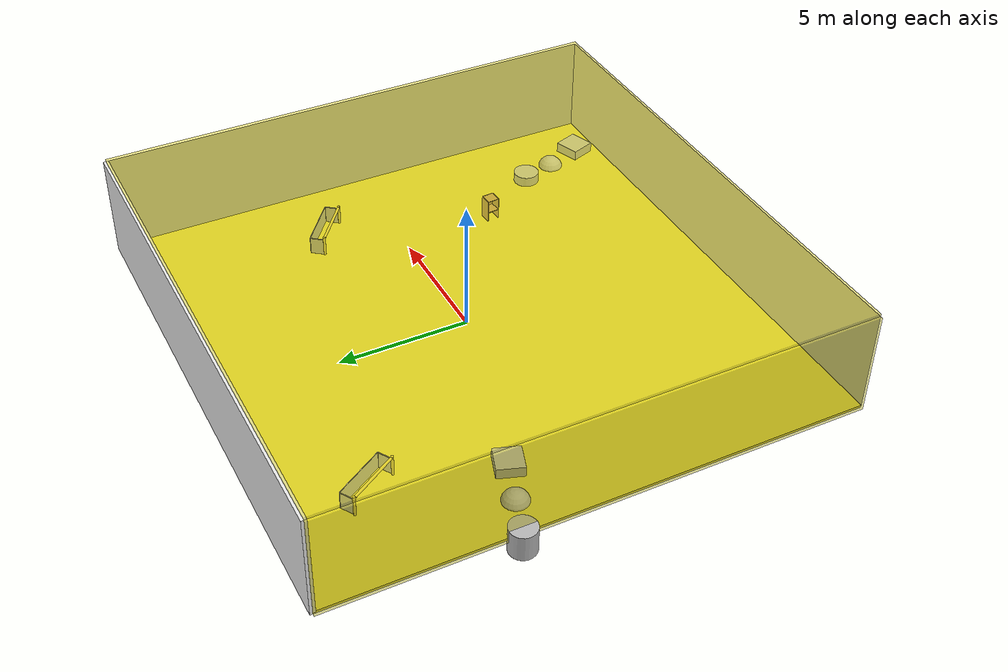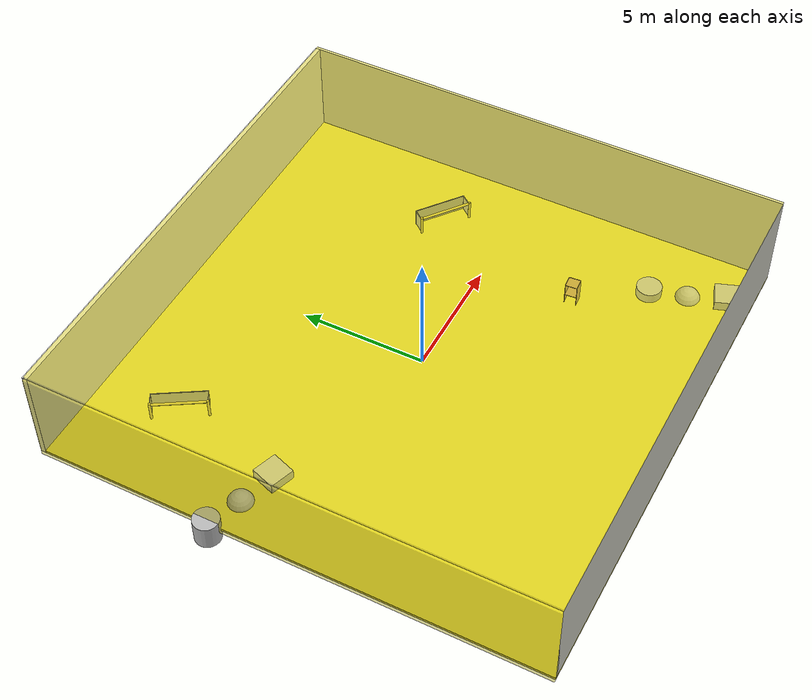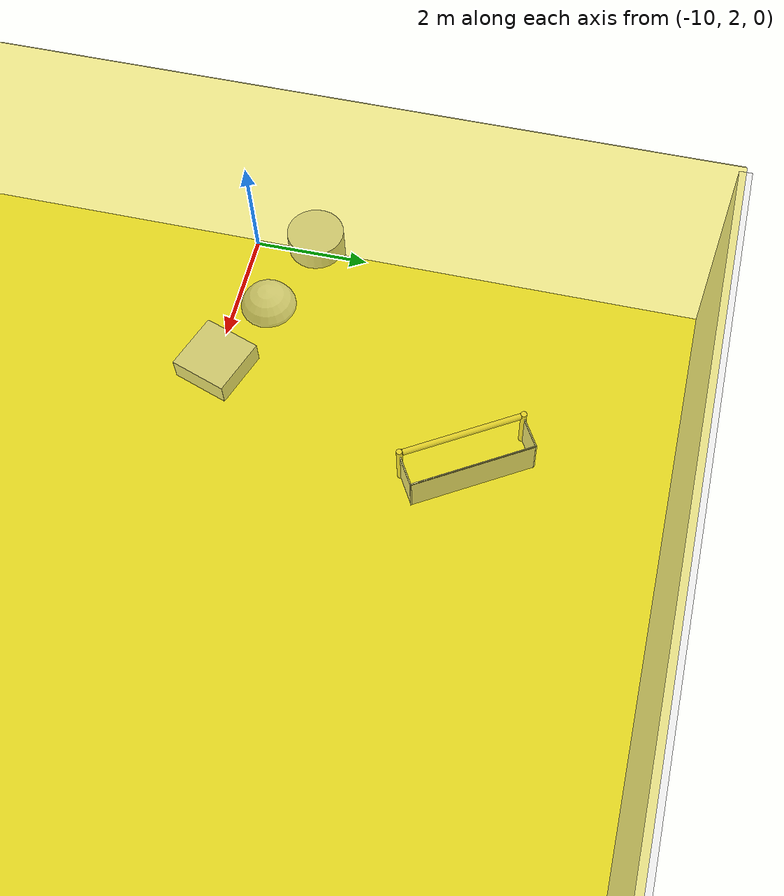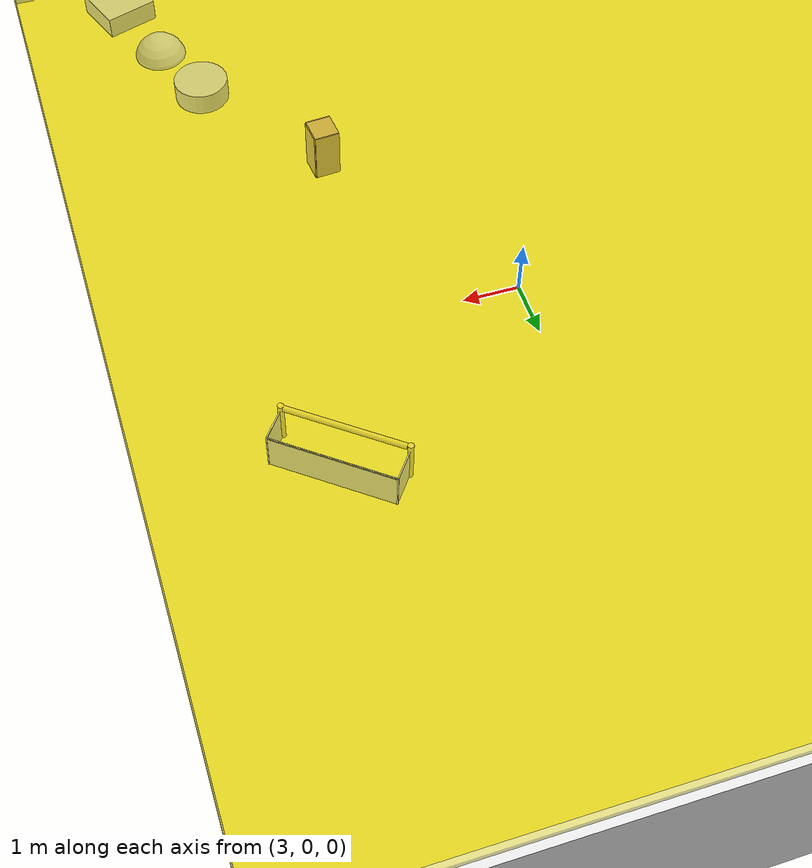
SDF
<sdf version="1.4">
 <world name="default">
  <physics type="ode">
   <max_step_size>0.001</max_step_size>
   <real_time_factor>1</real_time_factor>
   <real_time_update_rate>1000</real_time_update_rate>
   <gravity>0 0 -9.8</gravity>
  </physics>
  <scene><ambient>0.4 0.4 0.4 1</ambient><background>0.7 0.7 0.7 1</background><shadows>1</shadows></scene>
  <model name="Surrounding">
   <static>1</static>
   <link name="Ceiling">
    <collision name="Ceiling_Collision"><geometry><box><size>20 20 0.1</size></box></geometry></collision>
    <visual name="Ceiling_Visual">
     <geometry><box><size>20 20 0.1</size></box></geometry>
     <material>
      <script>
       <uri>file://media/materials/scripts/gazebo.material</uri>
       <name>Gazebo/YellowTransparent</name>
      </script>
     </material>
    </visual>
    <pose>0 0 4.05 0 0 0</pose>
   </link>
   <link name="Wall_South">
    <collision name="Wall_South_Collision">
     <geometry><box><size>20 0 4</size></box></geometry>
     <pose>0 0 2 0 -0 0</pose>
    </collision>
    <visual name="Wall_South_Visual">
     <pose>0 0 2 0 -0 0</pose>
     <geometry><box><size>20 0 4</size></box></geometry>
     <material>
      <script><uri>file://media/materials/scripts/gazebo.material</uri><name>Gazebo/PaintedWall</name></script>
     </material>
    </visual>
    <velocity_decay><linear>0</linear><angular>0</angular></velocity_decay>
    <pose>0 -10 0 0 -0 0</pose>
   </link>
   <link name="Wall_East">
    <collision name="Wall_21_Collision">
     <geometry><box><size>20 0 4</size></box></geometry>
     <pose>0 0 2 0 -0 0</pose>
    </collision>
    <visual name="Wall_21_Visual">
     <pose>0 0 2 0 -0 0</pose>
     <geometry><box><size>20 0 4</size></box></geometry>
     <material>
      <script><uri>file://media/materials/scripts/gazebo.material</uri><name>Gazebo/LightOff</name></script>
     </material>
    </visual>
    <velocity_decay><linear>0</linear><angular>0</angular></velocity_decay>
    <pose>10 0 0 0 -0 1.5708</pose>
   </link>
   <link name="Wall_North">
    <collision name="Wall_22_Collision">
     <geometry><box><size>20 0.2 4</size></box></geometry>
     <pose>0 0 2 0 -0 0</pose>
    </collision>
    <visual name="Wall_22_Visual">
     <pose>0 0 2 0 -0 0</pose>
     <geometry><box><size>20 0.2 4</size></box></geometry>
     <material>
      <script><uri>file://media/materials/scripts/gazebo.material</uri><name>Gazebo/White</name></script>
     </material>
    </visual>
    <velocity_decay><linear>0</linear><angular>0</angular></velocity_decay>
    <pose>0 10 0 0 -0 0</pose>
   </link>
   <link name="Wall_West">
    <collision name="Wall_23_Collision">
     <geometry><box><size>20 0.2 4</size></box></geometry>
     <pose>0 0 2 0 -0 0</pose>
    </collision>
    <visual name="Wall_23_Visual">
     <pose>0 0 2 0 -0 0</pose>
     <geometry><box><size>20 0.2 4</size></box></geometry>
     <material>
      <script>
       <uri>file://media/materials/scripts/gazebo.material</uri>
       <name>Gazebo/YellowTransparent</name>
      </script>
     </material>
    </visual>
    <velocity_decay><linear>0</linear><angular>0</angular></velocity_decay>
    <pose>-10 0 0 0 0 -1.5708</pose>
   </link>
   <link name="Ground_link">
    <collision name="collision">
     <pose>0 0 .05 0 -0 0</pose>
     <geometry><box><size>20 20 0.1</size></box></geometry>
    </collision>
    <visual name="visual">
     <pose>0 0 .05 0 -0 0</pose>
     <geometry><box><size>20 20 0.1</size></box></geometry>
     <material>
      <script><uri>file://media/materials/scripts/gazebo.material</uri><name>Gazebo/Yellow</name></script>
     </material>
    </visual>
   </link>
   <static>1</static>
  </model>
  <spherical_coordinates>
   <surface_model>EARTH_WGS84</surface_model>
   <latitude_deg>0</latitude_deg>
   <longitude_deg>0</longitude_deg>
   <elevation>0</elevation>
   <heading_deg>0</heading_deg>
  </spherical_coordinates>
  <light name="lightball_0" type="diffuse">
   <diffuse>0.8 0.8 0.8 1</diffuse>
   <specular>0.2 0.2 0.2 1</specular>
   <attenuation>
    <range>100</range>
    <constant>0.7</constant>
    <linear>0.01</linear>
    <quadratic>0.001</quadratic>
   </attenuation>
   <direction>-0.5 0.1 -0.9</direction>
   <pose>-8.38689758497 -9.84431784708 3.38224528826 0 0 0</pose>
  </light>
  <light name="lightball_1" type="diffuse">
   <diffuse>0.8 0.8 0.8 1</diffuse>
   <specular>0.2 0.2 0.2 1</specular>
   <attenuation>
    <range>100</range>
    <constant>0.7</constant>
    <linear>0.01</linear>
    <quadratic>0.001</quadratic>
   </attenuation>
   <direction>-0.5 0.1 -0.9</direction>
   <pose>5.73754049961 6.17832266448 1.12369944464 0 0 0</pose>
  </light>
  <light name="lightball_2" type="diffuse">
   <diffuse>0.8 0.8 0.8 1</diffuse>
   <specular>0.2 0.2 0.2 1</specular>
   <attenuation>
    <range>100</range>
    <constant>0.7</constant>
    <linear>0.01</linear>
    <quadratic>0.001</quadratic>
   </attenuation>
   <direction>-0.5 0.1 -0.9</direction>
   <pose>3.79374072169 -7.55854413569 2.5856491044 0 0 0</pose>
  </light>
  <light name="lightball_3" type="diffuse">
   <diffuse>0.8 0.8 0.8 1</diffuse>
   <specular>0.2 0.2 0.2 1</specular>
   <attenuation>
    <range>100</range>
    <constant>0.7</constant>
    <linear>0.01</linear>
    <quadratic>0.001</quadratic>
   </attenuation>
   <direction>-0.5 0.1 -0.9</direction>
   <pose>6.06625957647 2.97702392187 0.544393771264 0 0 0</pose>
  </light>
  <include>
   <uri>model://textured_shapes</uri>
   <pose>-8.68547242975 2.5806956095 0 0 0 1.23840464021</pose>
  </include>
  <include>
   <uri>model://robocup_3Dsim_goal</uri>
   <pose>-6.45928136099 6.48794940916 0 0 0 0.550818652679</pose>
  </include>
  <include><uri>model://cabinet</uri><pose>5.36680835381 -3.70873023014 0 0 0 0.0822889937748</pose></include>
  <include>
   <uri>model://textured_shapes</uri>
   <pose>7.54262624064 -7.62307114371 0 0 0 0.341620612051</pose>
  </include>
  <include>
   <uri>model://robocup_3Dsim_goal</uri>
   <pose>6.80822977336 2.46237300226 0 0 0 0.911441472826</pose>
  </include>
 </world>
</sdf>

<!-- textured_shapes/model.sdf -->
<sdf version="1.6">
  <model name="textured_shapes">
    <pose>0 0 0.5 0 0 0</pose>
    <link name="box">
      <pose>0 -1.5 0 0 0 0</pose>
      <collision name="collision">
        <geometry>
          <box>
            <size>1 1 1</size>
          </box>
        </geometry>
      </collision>
      <visual name="visual">
        <geometry>
          <box>
            <size>1 1 1</size>
          </box>
        </geometry>
        <material>
          <script>
            <uri>model://../model_source/models/textured_shapes/materials/scripts</uri>
            <uri>model://../model_source/models/textured_shapes/materials/textures</uri>
            <name>TexturedShape/Squares</name>
          </script>
        </material>
      </visual>
    </link>
    <link name="sphere">
      <collision name="collision">
        <geometry>
          <sphere>
            <radius>0.5</radius>
          </sphere>
        </geometry>
      </collision>
      <visual name="visual">
        <geometry>
          <sphere>
            <radius>0.5</radius>
          </sphere>
        </geometry>
        <material>
          <script>
            <uri>model://../model_source/models/textured_shapes/materials/scripts</uri>
            <uri>model://../model_source/models/textured_shapes/materials/textures</uri>
            <name>TexturedShape/Squares</name>
          </script>
        </material>
      </visual>
    </link>
    <link name="cylinder">
      <pose>0 1.5 0 0 0 0</pose>
      <collision name="collision">
        <geometry>
          <cylinder>
            <radius>0.5</radius>
            <length>1</length>
          </cylinder>
        </geometry>
      </collision>
      <visual name="visual">
        <geometry>
          <cylinder>
            <radius>0.5</radius>
            <length>1</length>
          </cylinder>
        </geometry>
        <material>
          <script>
            <uri>model://../model_source/models/textured_shapes/materials/scripts</uri>
            <uri>model://../model_source/models/textured_shapes/materials/textures</uri>
            <name>TexturedShape/Squares</name>
          </script>
        </material>
      </visual>
    </link>
  </model>
</sdf>

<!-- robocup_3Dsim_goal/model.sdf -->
<sdf version="1.5">
  <model name="robocup_3d_goal">
    <static>true</static>
    <link name="left_post">
      <pose>0 1.05 0.45 0 0 0</pose>
      <collision name="collision">
        <geometry>
          <cylinder>
            <radius>0.05</radius>
            <length>0.9</length>
          </cylinder>
        </geometry>
      </collision>
      <visual name="visual">
        <geometry>
          <cylinder>
            <radius>0.05</radius>
            <length>0.9</length>
          </cylinder>
        </geometry>
        <material>
          <script>
            <uri>file://media/materials/scripts/gazebo.material</uri>
            <name>Gazebo/ZincYellow</name>
          </script>
        </material>
      </visual>
    </link>
    <link name="left_support_horiz_lower">
      <pose>0.30 1.05 0.01 0 0 0</pose>
      <collision name="collision">
        <geometry>
          <box>
            <size>0.50 0.02 0.02</size>
          </box>
        </geometry>
      </collision>
      <visual name="visual">
        <geometry>
          <box>
            <size>0.50 0.02 0.02</size>
          </box>
        </geometry>
        <material>
          <script>
            <uri>file://media/materials/scripts/gazebo.material</uri>
            <name>Gazebo/White</name>
          </script>
        </material>
      </visual>
    </link>
    <link name="left_support_horiz_upper">
      <pose>0.30 1.05 0.79 0 0 0</pose>
      <collision name="collision">
        <geometry>
          <box>
            <size>0.50 0.02 0.02</size>
          </box>
        </geometry>
      </collision>
      <visual name="visual">
        <geometry>
          <box>
            <size>0.50 0.02 0.02</size>
          </box>
        </geometry>
        <material>
          <script>
            <uri>file://media/materials/scripts/gazebo.material</uri>
            <name>Gazebo/White</name>
          </script>
        </material>
      </visual>
    </link>
    <link name="left_support_vertical">
      <pose>0.56 1.05 0.4 0 1.5708 0</pose>
      <collision name="collision">
        <geometry>
          <box>
            <size>0.80 0.02 0.02</size>
          </box>
        </geometry>
      </collision>
      <visual name="visual">
        <geometry>
          <box>
            <size>0.80 0.02 0.02</size>
          </box>
        </geometry>
        <material>
          <script>
            <uri>file://media/materials/scripts/gazebo.material</uri>
            <name>Gazebo/White</name>
          </script>
        </material>
      </visual>
    </link>
    <link name="right_support_horiz_lower">
      <pose>0.30 -1.05 0.01 0 0 0</pose>
      <collision name="collision">
        <geometry>
          <box>
            <size>0.50 0.02 0.02</size>
          </box>
        </geometry>
      </collision>
      <visual name="visual">
        <geometry>
          <box>
            <size>0.50 0.02 0.02</size>
          </box>
        </geometry>
        <material>
          <script>
            <uri>file://media/materials/scripts/gazebo.material</uri>
            <name>Gazebo/White</name>
          </script>
        </material>
      </visual>
    </link>
    <link name="right_support_horiz_upper">
      <pose>0.30 -1.05 0.79 0 0 0</pose>
      <collision name="collision">
        <geometry>
          <box>
            <size>0.50 0.02 0.02</size>
          </box>
        </geometry>
      </collision>
      <visual name="visual">
        <geometry>
          <box>
            <size>0.50 0.02 0.02</size>
          </box>
        </geometry>
        <material>
          <script>
            <uri>file://media/materials/scripts/gazebo.material</uri>
            <name>Gazebo/White</name>
          </script>
        </material>
      </visual>
    </link>
    <link name="right_support_vertical">
      <pose>0.56 -1.05 0.4 0 1.5708 0</pose>
      <collision name="collision">
        <geometry>
          <box>
            <size>0.80 0.02 0.02</size>
          </box>
        </geometry>
      </collision>
      <visual name="visual">
        <geometry>
          <box>
            <size>0.80 0.02 0.02</size>
          </box>
        </geometry>
        <material>
          <script>
            <uri>file://media/materials/scripts/gazebo.material</uri>
            <name>Gazebo/White</name>
          </script>
        </material>
      </visual>
    </link>
    <link name="center_support_horiz_lower">
      <pose>0.56 0 0.01 0 1.5708 0</pose>
      <collision name="collision">
        <geometry>
          <box>
            <size>0.02 2.08 0.02</size>
          </box>
        </geometry>
      </collision>
      <visual name="visual">
        <geometry>
          <box>
            <size>0.02 2.08 0.02</size>
          </box>
        </geometry>
        <material>
          <script>
            <uri>file://media/materials/scripts/gazebo.material</uri>
            <name>Gazebo/White</name>
          </script>
        </material>
      </visual>
    </link>
    <link name="center_support_horiz_upper">
      <pose>0.56 0 0.79 0 1.5708 0</pose>
      <collision name="collision">
        <geometry>
          <box>
            <size>0.02 2.08 0.02</size>
          </box>
        </geometry>
      </collision>
      <visual name="visual">
        <geometry>
          <box>
            <size>0.02 2.08 0.02</size>
          </box>
        </geometry>
        <material>
          <script>
            <uri>file://media/materials/scripts/gazebo.material</uri>
            <name>Gazebo/White</name>
          </script>
        </material>
      </visual>
    </link>
    <link name="right_post">
      <pose>0 -1.05 0.45 0 0 0</pose>
      <collision name="collision">
        <geometry>
          <cylinder>
            <radius>0.05</radius>
            <length>0.9</length>
          </cylinder>
        </geometry>
      </collision>
      <visual name="visual">
        <geometry>
          <cylinder>
            <radius>0.05</radius>
            <length>0.9</length>
          </cylinder>
        </geometry>
        <material>
          <script>
            <uri>file://media/materials/scripts/gazebo.material</uri>
            <name>Gazebo/ZincYellow</name>
          </script>
        </material>
      </visual>
    </link>
    <link name="crossbar">
      <pose>0 0 0.85 1.57 1.57 0</pose>
      <collision name="collision">
        <geometry>
          <cylinder>
            <radius>0.05</radius>
            <length>2.0</length>
          </cylinder>
        </geometry>
      </collision>
      <visual name="visual">
        <geometry>
          <cylinder>
            <radius>0.05</radius>
            <length>2.0</length>
          </cylinder>
        </geometry>
        <material>
          <script>
            <uri>file://media/materials/scripts/gazebo.material</uri>
            <name>Gazebo/ZincYellow</name>
          </script>
        </material>
      </visual>
    </link>
    <link name="center_net">
      <pose>0.56 0 0.40 0 0 0</pose>
      <collision name="collision">
        <geometry>
          <box>
            <size>0.01 2.1 0.80</size>
          </box>
        </geometry>
      </collision>
      <visual name="visual">
        <geometry>
          <box>
            <size>0.01 2.1 0.80</size>
          </box>
        </geometry>
        <material>
          <script>
            <uri>model://../model_source/models/robocup09_spl_field/materials/scripts/</uri>
            <uri>model://../model_source/models/robocup09_spl_field/materials/textures/</uri>
            <name>RoboCup/Net</name>
          </script>
        </material>
      </visual>
    </link>
    <link name="left_net">
      <pose>0.30 1.05 0.40 0 0 0</pose>
      <collision name="collision">
        <geometry>
          <box>
            <size>0.50 0.01 0.76</size>
          </box>
        </geometry>
      </collision>
      <visual name="visual">
        <geometry>
          <box>
            <size>0.50 0.01 0.76</size>
          </box>
        </geometry>
        <material>
          <script>
            <uri>model://../model_source/models/robocup09_spl_field/materials/scripts/</uri>
            <uri>model://../model_source/models/robocup09_spl_field/materials/textures/</uri>
            <name>RoboCup/Net</name>
          </script>
        </material>
      </visual>
    </link>
    <link name="right_net">
      <pose>0.30 -1.05 0.40 0 0 0</pose>
      <collision name="collision">
        <geometry>
          <box>
            <size>0.50 0.01 0.76</size>
          </box>
        </geometry>
      </collision>
      <visual name="visual">
        <geometry>
          <box>
            <size>0.50 0.01 0.76</size>
          </box>
        </geometry>
        <material>
          <script>
            <uri>model://../model_source/models/robocup09_spl_field/materials/scripts/</uri>
            <uri>model://../model_source/models/robocup09_spl_field/materials/textures/</uri>
            <name>RoboCup/Net</name>
          </script>
        </material>
      </visual>
    </link>
  </model>
</sdf>

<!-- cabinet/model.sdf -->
<sdf version="1.5">
  <model name="cabinet">
    <static>true</static>
    <link name="cabinet_bottom_plate">
      <inertial>
        <pose>0 0 -1 0 0 0</pose>
        <inertia>
          <ixx>2.050000</ixx>
          <ixy>0</ixy>
          <ixz>0</ixz>
          <iyy>2.050000</iyy>
          <iyz>0</iyz>
          <izz>2.050000</izz>
        </inertia>
        <mass>25.000000</mass>
      </inertial>
      <collision name="cabinet_bottom_plate_geom">
        <pose>0 0 0.010000 0 0 0</pose>
        <geometry>
          <box>
            <size>0.450000 0.450000 0.020000</size>
          </box>
        </geometry>
      </collision>
      <visual name="cabinet_bottom_plate_geom_visual">
        <pose>0 0 0.010000 0 0 0</pose>
        <geometry>
          <box>
            <size>0.450000 0.450000 0.020000</size>
          </box>
        </geometry>
        <material>
          <script>
            <uri>model://media/materials/scripts/gazebo.material</uri>
            <name>Gazebo/Wood</name>
          </script>
        </material>
      </visual>
      <collision name="cabinet_bottom_plate_geom_cabinet_back_plate">
        <pose>0.235000 0 0.510000 0 0 0</pose>
        <geometry>
          <box>
            <size>0.020000 0.450000 1.020000</size>
          </box>
        </geometry>
      </collision>
      <visual name="cabinet_bottom_plate_geom_cabinet_back_plate_visual">
        <pose>0.235000 0 0.510000 0 0 0</pose>
        <geometry>
          <box>
            <size>0.020000 0.450000 1.020000</size>
          </box>
        </geometry>
        <material>
          <script>
            <uri>model://media/materials/scripts/gazebo.material</uri>
            <name>Gazebo/Wood</name>
          </script>
        </material>
      </visual>
      <collision name="cabinet_bottom_plate_geom_cabinet_left_plate">
        <pose>0 0.235000 0.510000 0 0 0</pose>
        <geometry>
          <box>
            <size>0.450000 0.020000 1.020000</size>
          </box>
        </geometry>
      </collision>
      <visual name="cabinet_bottom_plate_geom_cabinet_left_plate_visual">
        <pose>0 0.235000 0.510000 0 0 0</pose>
        <geometry>
          <box>
            <size>0.450000 0.020000 1.020000</size>
          </box>
        </geometry>
        <material>
          <script>
            <uri>model://media/materials/scripts/gazebo.material</uri>
            <name>Gazebo/Wood</name>
          </script>
        </material>
      </visual>
      <collision name="cabinet_bottom_plate_geom_cabinet_middle_plate">
        <pose>0 0 0.510000 0 0 0</pose>
        <geometry>
          <box>
            <size>0.450000 0.450000 0.020000</size>
          </box>
        </geometry>
      </collision>
      <visual name="cabinet_bottom_plate_geom_cabinet_middle_plate_visual">
        <pose>0 0 0.510000 0 0 0</pose>
        <geometry>
          <box>
            <size>0.450000 0.450000 0.020000</size>
          </box>
        </geometry>
        <material>
          <script>
            <uri>model://media/materials/scripts/gazebo.material</uri>
            <name>Gazebo/Wood</name>
          </script>
        </material>
      </visual>
      <collision name="cabinet_bottom_plate_geom_cabinet_right_plate">
        <pose>0 -0.235000 0.510000 0 0 0</pose>
        <geometry>
          <box>
            <size>0.450000 0.020000 1.020000</size>
          </box>
        </geometry>
      </collision>
      <visual name="cabinet_bottom_plate_geom_cabinet_right_plate_visual">
        <pose>0 -0.235000 0.510000 0 0 0</pose>
        <geometry>
          <box>
            <size>0.450000 0.020000 1.020000</size>
          </box>
        </geometry>
        <material>
          <script>
            <uri>model://media/materials/scripts/gazebo.material</uri>
            <name>Gazebo/Wood</name>
          </script>
        </material>
      </visual>
      <collision name="cabinet_bottom_plate_geom_cabinet_top_plate">
        <pose>0 0 1.010000 0 0 0</pose>
        <geometry>
          <box>
            <size>0.450000 0.450000 0.020000</size>
          </box>
        </geometry>
      </collision>
      <visual name="cabinet_bottom_plate_geom_cabinet_top_plate_visual">
        <pose>0 0 1.010000 0 0 0</pose>
        <geometry>
          <box>
            <size>0.450000 0.450000 0.020000</size>
          </box>
        </geometry>
        <material>
          <script>
            <uri>model://media/materials/scripts/gazebo.material</uri>
            <name>Gazebo/Wood</name>
          </script>
        </material>
      </visual>
    </link>
  </model>
</sdf>
